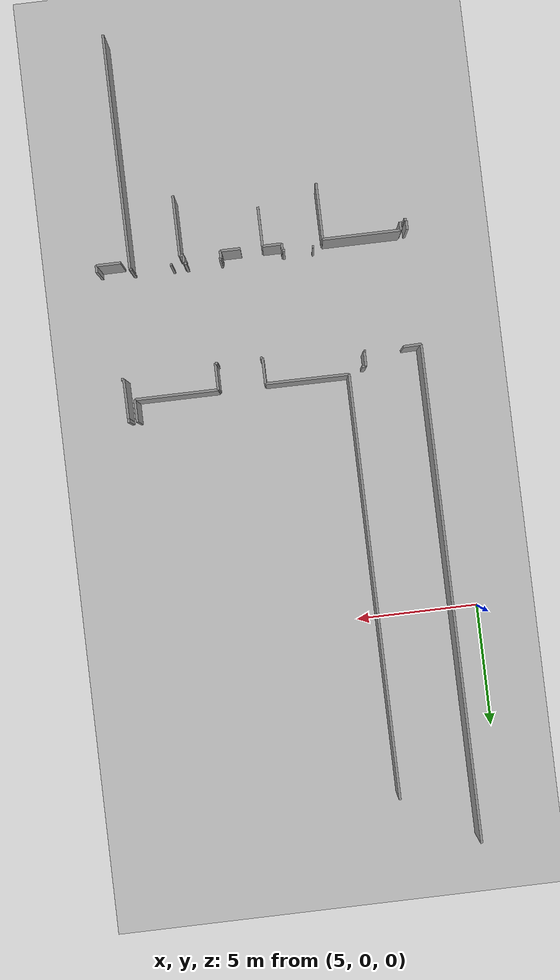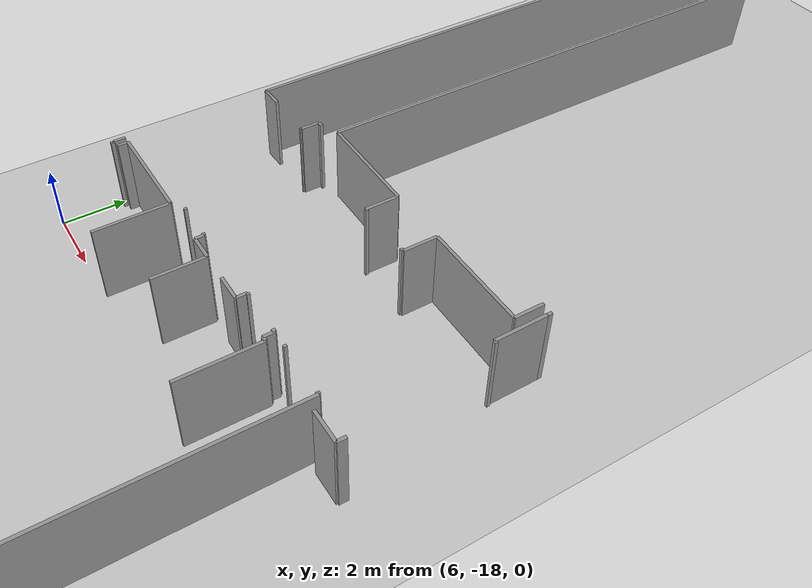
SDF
<sdf version="1.6">
 <world name="default">
  <model name="ground_plane">
   <static>1</static>
   <link name="link">
    <collision name="collision">
     <geometry><plane><normal>0 0 1</normal><size>100 100</size></plane></geometry>
     <surface><friction><ode><mu>100</mu><mu2>50</mu2></ode></friction></surface>
    </collision>
    <visual name="visual">
     <cast_shadows>0</cast_shadows>
     <geometry><plane><normal>0 0 1</normal><size>100 100</size></plane></geometry>
     <material>
      <script><uri>file://media/materials/scripts/gazebo.material</uri><name>Gazebo/Grey</name></script>
     </material>
    </visual>
   </link>
  </model>
  <model name="50045368">
   <static>1</static>
   <link name="Wall_209">
    <collision name="Wall_209_Collision">
     <geometry><box><size>20.2794155019 0.1 2.5</size></box></geometry>
     <pose>10.139707751 0 1.25 0 0 0</pose>
    </collision>
    <visual name="Wall_209_Visual">
     <pose>10.139707751 0 1.25 0 0 0</pose>
     <geometry><box><size>20.2794155019 0.1 2.5</size></box></geometry>
     <material>
      <script><uri>file://media/materials/scripts/gazebo.material</uri><name>Gazebo/Grey</name></script>
      <ambient>1 1 1 1</ambient>
     </material>
    </visual>
    <pose>58.9613722999 -36.5505717916 0 0 0 1.57079632679</pose>
   </link>
   <link name="Wall_215">
    <collision name="Wall_215_Collision">
     <geometry><box><size>0.161499364676 0.1 2.5</size></box></geometry>
     <pose>0.080749682338 0 1.25 0 0 0</pose>
    </collision>
    <visual name="Wall_215_Visual">
     <pose>0.080749682338 0 1.25 0 0 0</pose>
     <geometry><box><size>0.161499364676 0.1 2.5</size></box></geometry>
     <material>
      <script><uri>file://media/materials/scripts/gazebo.material</uri><name>Gazebo/Grey</name></script>
      <ambient>1 1 1 1</ambient>
     </material>
    </visual>
    <pose>61.4564167726 -35.927064803 0 0 0 3.14159265359</pose>
   </link>
   <link name="Wall_216">
    <collision name="Wall_216_Collision">
     <geometry><box><size>0.606607369759 0.1 2.5</size></box></geometry>
     <pose>0.303303684879 0 1.25 0 0 0</pose>
    </collision>
    <visual name="Wall_216_Visual">
     <pose>0.303303684879 0 1.25 0 0 0</pose>
     <geometry><box><size>0.606607369759 0.1 2.5</size></box></geometry>
     <material>
      <script><uri>file://media/materials/scripts/gazebo.material</uri><name>Gazebo/Grey</name></script>
      <ambient>1 1 1 1</ambient>
     </material>
    </visual>
    <pose>61.2949174079 -35.927064803 0 0 0 -1.57079632679</pose>
   </link>
   <link name="Wall_217">
    <collision name="Wall_217_Collision">
     <geometry><box><size>0.0573062261754 0.1 2.5</size></box></geometry>
     <pose>0.0286531130877 0 1.25 0 0 0</pose>
    </collision>
    <visual name="Wall_217_Visual">
     <pose>0.0286531130877 0 1.25 0 0 0</pose>
     <geometry><box><size>0.0573062261754 0.1 2.5</size></box></geometry>
     <material>
      <script><uri>file://media/materials/scripts/gazebo.material</uri><name>Gazebo/Grey</name></script>
      <ambient>1 1 1 1</ambient>
     </material>
    </visual>
    <pose>61.2949174079 -36.5336721728 0 0 0 3.14159265359</pose>
   </link>
   <link name="Wall_218">
    <collision name="Wall_218_Collision">
     <geometry><box><size>0.724720573252 0.1 2.5</size></box></geometry>
     <pose>0.362360286626 0 1.25 0 0 0</pose>
    </collision>
    <visual name="Wall_218_Visual">
     <pose>0.362360286626 0 1.25 0 0 0</pose>
     <geometry><box><size>0.724720573252 0.1 2.5</size></box></geometry>
     <material>
      <script><uri>file://media/materials/scripts/gazebo.material</uri><name>Gazebo/Grey</name></script>
      <ambient>1 1 1 1</ambient>
     </material>
    </visual>
    <pose>59.6858958069 -36.5336721728 0 0 0 -3.11827173325</pose>
   </link>
   <link name="Wall_219">
    <collision name="Wall_219_Collision">
     <geometry><box><size>17.2974587039 0.1 2.5</size></box></geometry>
     <pose>8.64872935197 0 1.25 0 0 0</pose>
    </collision>
    <visual name="Wall_219_Visual">
     <pose>8.64872935197 0 1.25 0 0 0</pose>
     <geometry><box><size>17.2974587039 0.1 2.5</size></box></geometry>
     <material>
      <script><uri>file://media/materials/scripts/gazebo.material</uri><name>Gazebo/Grey</name></script>
      <ambient>1 1 1 1</ambient>
     </material>
    </visual>
    <pose>62.0162642948 -35.6786531131 0 0 0 1.57079632679</pose>
   </link>
   <link name="Wall_227">
    <collision name="Wall_227_Collision">
     <geometry><box><size>0.917407878018 0.1 2.5</size></box></geometry>
     <pose>0.458703939009 0 1.25 0 0 0</pose>
    </collision>
    <visual name="Wall_227_Visual">
     <pose>0.458703939009 0 1.25 0 0 0</pose>
     <geometry><box><size>0.917407878018 0.1 2.5</size></box></geometry>
     <material>
      <script><uri>file://media/materials/scripts/gazebo.material</uri><name>Gazebo/Grey</name></script>
      <ambient>1 1 1 1</ambient>
     </material>
    </visual>
    <pose>70.7848792884 -34.7595933926 0 0 0 -1.57079632679</pose>
   </link>
   <link name="Wall_228">
    <collision name="Wall_228_Collision">
     <geometry><box><size>3.41435832274 0.1 2.5</size></box></geometry>
     <pose>1.70717916137 0 1.25 0 0 0</pose>
    </collision>
    <visual name="Wall_228_Visual">
     <pose>1.70717916137 0 1.25 0 0 0</pose>
     <geometry><box><size>3.41435832274 0.1 2.5</size></box></geometry>
     <material>
      <script><uri>file://media/materials/scripts/gazebo.material</uri><name>Gazebo/Grey</name></script>
      <ambient>1 1 1 1</ambient>
     </material>
    </visual>
    <pose>70.7848792884 -35.6770012706 0 0 0 3.14159265359</pose>
   </link>
   <link name="Wall_229">
    <collision name="Wall_229_Collision">
     <geometry><box><size>1.07712833545 0.1 2.5</size></box></geometry>
     <pose>0.538564167726 0 1.25 0 0 0</pose>
    </collision>
    <visual name="Wall_229_Visual">
     <pose>0.538564167726 0 1.25 0 0 0</pose>
     <geometry><box><size>1.07712833545 0.1 2.5</size></box></geometry>
     <material>
      <script><uri>file://media/materials/scripts/gazebo.material</uri><name>Gazebo/Grey</name></script>
      <ambient>1 1 1 1</ambient>
     </material>
    </visual>
    <pose>67.3705209657 -35.6770012706 0 0 0 -1.57079632679</pose>
   </link>
   <link name="Wall_230">
    <collision name="Wall_230_Collision">
     <geometry><box><size>0.107623888183 0.1 2.5</size></box></geometry>
     <pose>0.0538119440915 0 1.25 0 0 0</pose>
    </collision>
    <visual name="Wall_230_Visual">
     <pose>0.0538119440915 0 1.25 0 0 0</pose>
     <geometry><box><size>0.107623888183 0.1 2.5</size></box></geometry>
     <material>
      <script><uri>file://media/materials/scripts/gazebo.material</uri><name>Gazebo/Grey</name></script>
      <ambient>1 1 1 1</ambient>
     </material>
    </visual>
    <pose>67.3705209657 -36.7541296061 0 0 0 3.14159265359</pose>
   </link>
   <link name="Wall_231">
    <collision name="Wall_231_Collision">
     <geometry><box><size>0.0932655654384 0.1 2.5</size></box></geometry>
     <pose>0.0466327827192 0 1.25 0 0 0</pose>
    </collision>
    <visual name="Wall_231_Visual">
     <pose>0.0466327827192 0 1.25 0 0 0</pose>
     <geometry><box><size>0.0932655654384 0.1 2.5</size></box></geometry>
     <material>
      <script><uri>file://media/materials/scripts/gazebo.material</uri><name>Gazebo/Grey</name></script>
      <ambient>1 1 1 1</ambient>
     </material>
    </visual>
    <pose>65.5302414231 -36.7541296061 0 0 0 3.14159265359</pose>
   </link>
   <link name="Wall_232">
    <collision name="Wall_232_Collision">
     <geometry><box><size>1.05641677255 0.1 2.5</size></box></geometry>
     <pose>0.528208386277 0 1.25 0 0 0</pose>
    </collision>
    <visual name="Wall_232_Visual">
     <pose>0.528208386277 0 1.25 0 0 0</pose>
     <geometry><box><size>1.05641677255 0.1 2.5</size></box></geometry>
     <material>
      <script><uri>file://media/materials/scripts/gazebo.material</uri><name>Gazebo/Grey</name></script>
      <ambient>1 1 1 1</ambient>
     </material>
    </visual>
    <pose>65.4369758577 -36.7541296061 0 0 0 1.57079632679</pose>
   </link>
   <link name="Wall_233">
    <collision name="Wall_233_Collision">
     <geometry><box><size>3.42076466152 0.1 2.5</size></box></geometry>
     <pose>1.71038233076 0 1.25 0 0 0</pose>
    </collision>
    <visual name="Wall_233_Visual">
     <pose>1.71038233076 0 1.25 0 0 0</pose>
     <geometry><box><size>3.42076466152 0.1 2.5</size></box></geometry>
     <material>
      <script><uri>file://media/materials/scripts/gazebo.material</uri><name>Gazebo/Grey</name></script>
      <ambient>1 1 1 1</ambient>
     </material>
    </visual>
    <pose>65.4369758577 -35.6977128335 0 0 0 3.13602085285</pose>
   </link>
   <link name="Wall_267">
    <collision name="Wall_267_Collision">
     <geometry><box><size>0.144472681067 0.1 2.5</size></box></geometry>
     <pose>0.0722363405337 0 1.25 0 0 0</pose>
    </collision>
    <visual name="Wall_267_Visual">
     <pose>0.0722363405337 0 1.25 0 0 0</pose>
     <geometry><box><size>0.144472681067 0.1 2.5</size></box></geometry>
     <material>
      <script><uri>file://media/materials/scripts/gazebo.material</uri><name>Gazebo/Grey</name></script>
      <ambient>1 1 1 1</ambient>
     </material>
    </visual>
    <pose>71.127064803 -34.9254129606 0 0 0 1.57079632679</pose>
   </link>
   <link name="Wall_272">
    <collision name="Wall_272_Collision">
     <geometry><box><size>0.0955527318932 0.1 2.5</size></box></geometry>
     <pose>0.0477763659466 0 1.25 0 0 0</pose>
    </collision>
    <visual name="Wall_272_Visual">
     <pose>0.0477763659466 0 1.25 0 0 0</pose>
     <geometry><box><size>0.0955527318932 0.1 2.5</size></box></geometry>
     <material>
      <script><uri>file://media/materials/scripts/gazebo.material</uri><name>Gazebo/Grey</name></script>
      <ambient>1 1 1 1</ambient>
     </material>
    </visual>
    <pose>71.2334180432 -36.5480304956 0 0 0 3.14159265359</pose>
   </link>
   <link name="Wall_273">
    <collision name="Wall_273_Collision">
     <geometry><box><size>1.62265347985 0.1 2.5</size></box></geometry>
     <pose>0.811326739927 0 1.25 0 0 0</pose>
    </collision>
    <visual name="Wall_273_Visual">
     <pose>0.811326739927 0 1.25 0 0 0</pose>
     <geometry><box><size>1.62265347985 0.1 2.5</size></box></geometry>
     <material>
      <script><uri>file://media/materials/scripts/gazebo.material</uri><name>Gazebo/Grey</name></script>
      <ambient>1 1 1 1</ambient>
     </material>
    </visual>
    <pose>71.1378653113 -36.5480304956 0 0 0 1.57745245402</pose>
   </link>
   <link name="Wall_469">
    <collision name="Wall_469_Collision">
     <geometry><box><size>0.357179161372 0.1 2.5</size></box></geometry>
     <pose>0.178589580686 0 1.25 0 0 0</pose>
    </collision>
    <visual name="Wall_469_Visual">
     <pose>0.178589580686 0 1.25 0 0 0</pose>
     <geometry><box><size>0.357179161372 0.1 2.5</size></box></geometry>
     <material>
      <script><uri>file://media/materials/scripts/gazebo.material</uri><name>Gazebo/Grey</name></script>
      <ambient>1 1 1 1</ambient>
     </material>
    </visual>
    <pose>58.9590851334 -41.2686149936 0 0 0 -1.57079632679</pose>
   </link>
   <link name="Wall_470">
    <collision name="Wall_470_Collision">
     <geometry><box><size>0.0373570520966 0.1 2.5</size></box></geometry>
     <pose>0.0186785260483 0 1.25 0 0 0</pose>
    </collision>
    <visual name="Wall_470_Visual">
     <pose>0.0186785260483 0 1.25 0 0 0</pose>
     <geometry><box><size>0.0373570520966 0.1 2.5</size></box></geometry>
     <material>
      <script><uri>file://media/materials/scripts/gazebo.material</uri><name>Gazebo/Grey</name></script>
      <ambient>1 1 1 1</ambient>
     </material>
    </visual>
    <pose>58.9590851334 -41.625794155 0 0 0 0.0</pose>
   </link>
   <link name="Wall_471">
    <collision name="Wall_471_Collision">
     <geometry><box><size>0.112198221093 0.1 2.5</size></box></geometry>
     <pose>0.0560991105464 0 1.25 0 0 0</pose>
    </collision>
    <visual name="Wall_471_Visual">
     <pose>0.0560991105464 0 1.25 0 0 0</pose>
     <geometry><box><size>0.112198221093 0.1 2.5</size></box></geometry>
     <material>
      <script><uri>file://media/materials/scripts/gazebo.material</uri><name>Gazebo/Grey</name></script>
      <ambient>1 1 1 1</ambient>
     </material>
    </visual>
    <pose>58.9964421855 -41.625794155 0 0 0 -1.57079632679</pose>
   </link>
   <link name="Wall_499">
    <collision name="Wall_499_Collision">
     <geometry><box><size>0.339263024142 0.1 2.5</size></box></geometry>
     <pose>0.169631512071 0 1.25 0 0 0</pose>
    </collision>
    <visual name="Wall_499_Visual">
     <pose>0.169631512071 0 1.25 0 0 0</pose>
     <geometry><box><size>0.339263024142 0.1 2.5</size></box></geometry>
     <material>
      <script><uri>file://media/materials/scripts/gazebo.material</uri><name>Gazebo/Grey</name></script>
      <ambient>1 1 1 1</ambient>
     </material>
    </visual>
    <pose>59.2143583227 -41.6162642948 0 0 0 1.57079632679</pose>
   </link>
   <link name="Wall_500">
    <collision name="Wall_500_Collision">
     <geometry><box><size>3.21524777637 0.1 2.5</size></box></geometry>
     <pose>1.60762388818 0 1.25 0 0 0</pose>
    </collision>
    <visual name="Wall_500_Visual">
     <pose>1.60762388818 0 1.25 0 0 0</pose>
     <geometry><box><size>3.21524777637 0.1 2.5</size></box></geometry>
     <material>
      <script><uri>file://media/materials/scripts/gazebo.material</uri><name>Gazebo/Grey</name></script>
      <ambient>1 1 1 1</ambient>
     </material>
    </visual>
    <pose>59.2143583227 -41.2770012706 0 0 0 0.0</pose>
   </link>
   <link name="Wall_501">
    <collision name="Wall_501_Collision">
     <geometry><box><size>2.31041931385 0.1 2.5</size></box></geometry>
     <pose>1.15520965693 0 1.25 0 0 0</pose>
    </collision>
    <visual name="Wall_501_Visual">
     <pose>1.15520965693 0 1.25 0 0 0</pose>
     <geometry><box><size>2.31041931385 0.1 2.5</size></box></geometry>
     <material>
      <script><uri>file://media/materials/scripts/gazebo.material</uri><name>Gazebo/Grey</name></script>
      <ambient>1 1 1 1</ambient>
     </material>
    </visual>
    <pose>62.4296060991 -41.2770012706 0 0 0 -1.57079632679</pose>
   </link>
   <link name="Wall_508">
    <collision name="Wall_508_Collision">
     <geometry><box><size>0.825158831004 0.1 2.5</size></box></geometry>
     <pose>0.412579415502 0 1.25 0 0 0</pose>
    </collision>
    <visual name="Wall_508_Visual">
     <pose>0.412579415502 0 1.25 0 0 0</pose>
     <geometry><box><size>0.825158831004 0.1 2.5</size></box></geometry>
     <material>
      <script><uri>file://media/materials/scripts/gazebo.material</uri><name>Gazebo/Grey</name></script>
      <ambient>1 1 1 1</ambient>
     </material>
    </visual>
    <pose>65.8121982211 -41.2933926302 0 0 0 0.0</pose>
   </link>
   <link name="Wall_509">
    <collision name="Wall_509_Collision">
     <geometry><box><size>0.328716645489 0.1 2.5</size></box></geometry>
     <pose>0.164358322745 0 1.25 0 0 0</pose>
    </collision>
    <visual name="Wall_509_Visual">
     <pose>0.164358322745 0 1.25 0 0 0</pose>
     <geometry><box><size>0.328716645489 0.1 2.5</size></box></geometry>
     <material>
      <script><uri>file://media/materials/scripts/gazebo.material</uri><name>Gazebo/Grey</name></script>
      <ambient>1 1 1 1</ambient>
     </material>
    </visual>
    <pose>66.6373570521 -41.2933926302 0 0 0 1.57079632679</pose>
   </link>
   <link name="Wall_510">
    <collision name="Wall_510_Collision">
     <geometry><box><size>0.0758576874206 0.1 2.5</size></box></geometry>
     <pose>0.0379288437103 0 1.25 0 0 0</pose>
    </collision>
    <visual name="Wall_510_Visual">
     <pose>0.0379288437103 0 1.25 0 0 0</pose>
     <geometry><box><size>0.0758576874206 0.1 2.5</size></box></geometry>
     <material>
      <script><uri>file://media/materials/scripts/gazebo.material</uri><name>Gazebo/Grey</name></script>
      <ambient>1 1 1 1</ambient>
     </material>
    </visual>
    <pose>66.6373570521 -40.9646759848 0 0 0 0.0</pose>
   </link>
   <link name="Wall_511">
    <collision name="Wall_511_Collision">
     <geometry><box><size>0.105082592122 0.1 2.5</size></box></geometry>
     <pose>0.052541296061 0 1.25 0 0 0</pose>
    </collision>
    <visual name="Wall_511_Visual">
     <pose>0.052541296061 0 1.25 0 0 0</pose>
     <geometry><box><size>0.105082592122 0.1 2.5</size></box></geometry>
     <material>
      <script><uri>file://media/materials/scripts/gazebo.material</uri><name>Gazebo/Grey</name></script>
      <ambient>1 1 1 1</ambient>
     </material>
    </visual>
    <pose>68.0494282084 -40.9646759848 0 0 0 0.0</pose>
   </link>
   <link name="Wall_512">
    <collision name="Wall_512_Collision">
     <geometry><box><size>0.326810673443 0.1 2.5</size></box></geometry>
     <pose>0.163405336722 0 1.25 0 0 0</pose>
    </collision>
    <visual name="Wall_512_Visual">
     <pose>0.163405336722 0 1.25 0 0 0</pose>
     <geometry><box><size>0.326810673443 0.1 2.5</size></box></geometry>
     <material>
      <script><uri>file://media/materials/scripts/gazebo.material</uri><name>Gazebo/Grey</name></script>
      <ambient>1 1 1 1</ambient>
     </material>
    </visual>
    <pose>68.1545108005 -40.9646759848 0 0 0 -1.57079632679</pose>
   </link>
   <link name="Wall_513">
    <collision name="Wall_513_Collision">
     <geometry><box><size>0.143202033037 0.1 2.5</size></box></geometry>
     <pose>0.0716010165184 0 1.25 0 0 0</pose>
    </collision>
    <visual name="Wall_513_Visual">
     <pose>0.0716010165184 0 1.25 0 0 0</pose>
     <geometry><box><size>0.143202033037 0.1 2.5</size></box></geometry>
     <material>
      <script><uri>file://media/materials/scripts/gazebo.material</uri><name>Gazebo/Grey</name></script>
      <ambient>1 1 1 1</ambient>
     </material>
    </visual>
    <pose>68.1545108005 -41.2914866582 0 0 0 0.0</pose>
   </link>
   <link name="Wall_514">
    <collision name="Wall_514_Collision">
     <geometry><box><size>2.47725540025 0.1 2.5</size></box></geometry>
     <pose>1.23862770013 0 1.25 0 0 0</pose>
    </collision>
    <visual name="Wall_514_Visual">
     <pose>1.23862770013 0 1.25 0 0 0</pose>
     <geometry><box><size>2.47725540025 0.1 2.5</size></box></geometry>
     <material>
      <script><uri>file://media/materials/scripts/gazebo.material</uri><name>Gazebo/Grey</name></script>
      <ambient>1 1 1 1</ambient>
     </material>
    </visual>
    <pose>68.2977128335 -41.2914866582 0 0 0 -1.57079632679</pose>
   </link>
   <link name="Wall_519">
    <collision name="Wall_519_Collision">
     <geometry><box><size>0.0862770012706 0.1 2.5</size></box></geometry>
     <pose>0.0431385006353 0 1.25 0 0 0</pose>
    </collision>
    <visual name="Wall_519_Visual">
     <pose>0.0431385006353 0 1.25 0 0 0</pose>
     <geometry><box><size>0.0862770012706 0.1 2.5</size></box></geometry>
     <material>
      <script><uri>file://media/materials/scripts/gazebo.material</uri><name>Gazebo/Grey</name></script>
      <ambient>1 1 1 1</ambient>
     </material>
    </visual>
    <pose>68.6456162643 -40.9663278272 0 0 0 0.0</pose>
   </link>
   <link name="Wall_520">
    <collision name="Wall_520_Collision">
     <geometry><box><size>0.0874205844981 0.1 2.5</size></box></geometry>
     <pose>0.043710292249 0 1.25 0 0 0</pose>
    </collision>
    <visual name="Wall_520_Visual">
     <pose>0.043710292249 0 1.25 0 0 0</pose>
     <geometry><box><size>0.0874205844981 0.1 2.5</size></box></geometry>
     <material>
      <script><uri>file://media/materials/scripts/gazebo.material</uri><name>Gazebo/Grey</name></script>
      <ambient>1 1 1 1</ambient>
     </material>
    </visual>
    <pose>70.2862770013 -40.9663278272 0 0 0 0.0</pose>
   </link>
   <link name="Wall_521">
    <collision name="Wall_521_Collision">
     <geometry><box><size>9.71156289708 0.1 2.5</size></box></geometry>
     <pose>4.85578144854 0 1.25 0 0 0</pose>
    </collision>
    <visual name="Wall_521_Visual">
     <pose>4.85578144854 0 1.25 0 0 0</pose>
     <geometry><box><size>9.71156289708 0.1 2.5</size></box></geometry>
     <material>
      <script><uri>file://media/materials/scripts/gazebo.material</uri><name>Gazebo/Grey</name></script>
      <ambient>1 1 1 1</ambient>
     </material>
    </visual>
    <pose>70.3736975858 -40.9663278272 0 0 0 -1.57079632679</pose>
   </link>
   <link name="Wall_526">
    <collision name="Wall_526_Collision">
     <geometry><box><size>1.008386277 0.1 2.5</size></box></geometry>
     <pose>0.504193138501 0 1.25 0 0 0</pose>
    </collision>
    <visual name="Wall_526_Visual">
     <pose>0.504193138501 0 1.25 0 0 0</pose>
     <geometry><box><size>1.008386277 0.1 2.5</size></box></geometry>
     <material>
      <script><uri>file://media/materials/scripts/gazebo.material</uri><name>Gazebo/Grey</name></script>
      <ambient>1 1 1 1</ambient>
     </material>
    </visual>
    <pose>70.7139771283 -41.2879288437 0 0 0 0.0</pose>
   </link>
   <link name="Wall_527">
    <collision name="Wall_527_Collision">
     <geometry><box><size>0.278017789072 0.1 2.5</size></box></geometry>
     <pose>0.139008894536 0 1.25 0 0 0</pose>
    </collision>
    <visual name="Wall_527_Visual">
     <pose>0.139008894536 0 1.25 0 0 0</pose>
     <geometry><box><size>0.278017789072 0.1 2.5</size></box></geometry>
     <material>
      <script><uri>file://media/materials/scripts/gazebo.material</uri><name>Gazebo/Grey</name></script>
      <ambient>1 1 1 1</ambient>
     </material>
    </visual>
    <pose>71.7223634053 -41.2879288437 0 0 0 1.57079632679</pose>
   </link>
   <link name="Wall_577">
    <collision name="Wall_577_Collision">
     <geometry><box><size>0.0715374841169 0.1 2.5</size></box></geometry>
     <pose>0.0357687420585 0 1.25 0 0 0</pose>
    </collision>
    <visual name="Wall_577_Visual">
     <pose>0.0357687420585 0 1.25 0 0 0</pose>
     <geometry><box><size>0.0715374841169 0.1 2.5</size></box></geometry>
     <material>
      <script><uri>file://media/materials/scripts/gazebo.material</uri><name>Gazebo/Grey</name></script>
      <ambient>1 1 1 1</ambient>
     </material>
    </visual>
    <pose>62.8179161372 -41.0147395172 0 0 0 0.0</pose>
   </link>
   <link name="Wall_578">
    <collision name="Wall_578_Collision">
     <geometry><box><size>0.0955527318933 0.1 2.5</size></box></geometry>
     <pose>0.0477763659466 0 1.25 0 0 0</pose>
    </collision>
    <visual name="Wall_578_Visual">
     <pose>0.0477763659466 0 1.25 0 0 0</pose>
     <geometry><box><size>0.0955527318933 0.1 2.5</size></box></geometry>
     <material>
      <script><uri>file://media/materials/scripts/gazebo.material</uri><name>Gazebo/Grey</name></script>
      <ambient>1 1 1 1</ambient>
     </material>
    </visual>
    <pose>64.0142312579 -41.0147395172 0 0 0 0.0</pose>
   </link>
   <link name="Wall_579">
    <collision name="Wall_579_Collision">
     <geometry><box><size>0.270520965693 0.1 2.5</size></box></geometry>
     <pose>0.135260482846 0 1.25 0 0 0</pose>
    </collision>
    <visual name="Wall_579_Visual">
     <pose>0.135260482846 0 1.25 0 0 0</pose>
     <geometry><box><size>0.270520965693 0.1 2.5</size></box></geometry>
     <material>
      <script><uri>file://media/materials/scripts/gazebo.material</uri><name>Gazebo/Grey</name></script>
      <ambient>1 1 1 1</ambient>
     </material>
    </visual>
    <pose>64.1097839898 -41.0147395172 0 0 0 -1.57079632679</pose>
   </link>
   <link name="Wall_580">
    <collision name="Wall_580_Collision">
     <geometry><box><size>0.793265565438 0.1 2.5</size></box></geometry>
     <pose>0.396632782719 0 1.25 0 0 0</pose>
    </collision>
    <visual name="Wall_580_Visual">
     <pose>0.396632782719 0 1.25 0 0 0</pose>
     <geometry><box><size>0.793265565438 0.1 2.5</size></box></geometry>
     <material>
      <script><uri>file://media/materials/scripts/gazebo.material</uri><name>Gazebo/Grey</name></script>
      <ambient>1 1 1 1</ambient>
     </material>
    </visual>
    <pose>64.1097839898 -41.2852604828 0 0 0 0.0</pose>
   </link>
   <link name="Wall_581">
    <collision name="Wall_581_Collision">
     <geometry><box><size>1.61994917408 0.1 2.5</size></box></geometry>
     <pose>0.809974587039 0 1.25 0 0 0</pose>
    </collision>
    <visual name="Wall_581_Visual">
     <pose>0.809974587039 0 1.25 0 0 0</pose>
     <geometry><box><size>1.61994917408 0.1 2.5</size></box></geometry>
     <material>
      <script><uri>file://media/materials/scripts/gazebo.material</uri><name>Gazebo/Grey</name></script>
      <ambient>1 1 1 1</ambient>
     </material>
    </visual>
    <pose>64.9030495553 -41.2852604828 0 0 0 -1.57079632679</pose>
   </link>
   <pose>-52.8 25.6383100381 0 0 0 0</pose>
  </model>
 </world>
</sdf>
